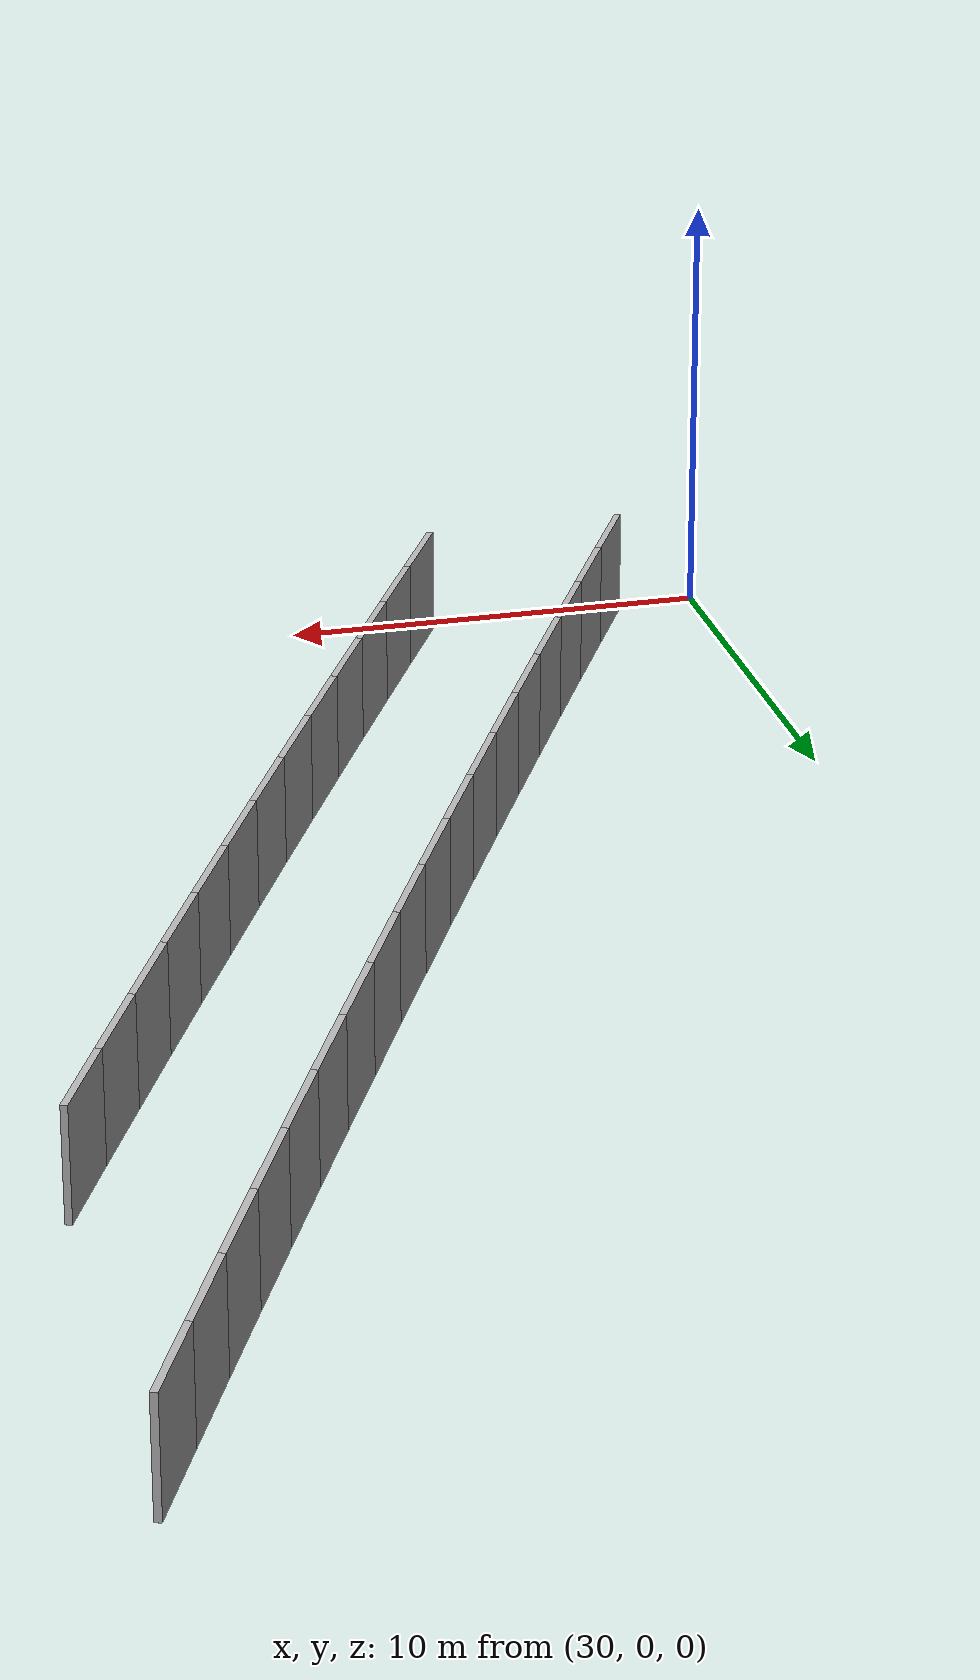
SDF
<?xml version="1.0" ?>
<sdf version="1.6">
  <model name="sps_4416">
    <pose frame="">0 0 0 0 -0 0</pose>
    <static>1</static>
    <self_collide>0</self_collide>
    <allow_auto_disable>0</allow_auto_disable>
    <link name="Wall4347">
      <kinematic>0</kinematic>
      <gravity>1</gravity>
      <self_collide>0</self_collide>
      <collision name="collision">
        <geometry>
          <box>
            <size>2.25457 0.15 2.5</size>
          </box>
        </geometry>
        <pose frame="">0 0 0 0 -0 0</pose>
      </collision>
      <visual name="visual">
        <geometry>
          <box>
            <size>2.25457 0.15 2.5</size>
          </box>
        </geometry>
        <pose frame="">0 0 0 0 -0 0</pose>
        <cast_shadows>1</cast_shadows>
        <transparency>0.0</transparency>
      </visual>
      <pose frame="">37.193 1.31227 1.25 0 -0 1.09524</pose>
    </link>
    <link name="Wall4348">
      <kinematic>0</kinematic>
      <gravity>1</gravity>
      <self_collide>0</self_collide>
      <collision name="collision">
        <geometry>
          <box>
            <size>2.25454 0.15 2.5</size>
          </box>
        </geometry>
        <pose frame="">0 0 0 0 -0 0</pose>
      </collision>
      <visual name="visual">
        <geometry>
          <box>
            <size>2.25454 0.15 2.5</size>
          </box>
        </geometry>
        <pose frame="">0 0 0 0 -0 0</pose>
        <cast_shadows>1</cast_shadows>
        <transparency>0.0</transparency>
      </visual>
      <pose frame="">38.2228 3.31789 1.25 0 -0 1.09763</pose>
    </link>
    <link name="Wall4349">
      <kinematic>0</kinematic>
      <gravity>1</gravity>
      <self_collide>0</self_collide>
      <collision name="collision">
        <geometry>
          <box>
            <size>2.25488 0.15 2.5</size>
          </box>
        </geometry>
        <pose frame="">0 0 0 0 -0 0</pose>
      </collision>
      <visual name="visual">
        <geometry>
          <box>
            <size>2.25488 0.15 2.5</size>
          </box>
        </geometry>
        <pose frame="">0 0 0 0 -0 0</pose>
        <cast_shadows>1</cast_shadows>
        <transparency>0.0</transparency>
      </visual>
      <pose frame="">39.2479 5.32609 1.25 0 -0 1.10002</pose>
    </link>
    <link name="Wall4350">
      <kinematic>0</kinematic>
      <gravity>1</gravity>
      <self_collide>0</self_collide>
      <collision name="collision">
        <geometry>
          <box>
            <size>2.2546 0.15 2.5</size>
          </box>
        </geometry>
        <pose frame="">0 0 0 0 -0 0</pose>
      </collision>
      <visual name="visual">
        <geometry>
          <box>
            <size>2.2546 0.15 2.5</size>
          </box>
        </geometry>
        <pose frame="">0 0 0 0 -0 0</pose>
        <cast_shadows>1</cast_shadows>
        <transparency>0.0</transparency>
      </visual>
      <pose frame="">40.2681 7.33678 1.25 0 -0 1.10241</pose>
    </link>
    <link name="Wall4351">
      <kinematic>0</kinematic>
      <gravity>1</gravity>
      <self_collide>0</self_collide>
      <collision name="collision">
        <geometry>
          <box>
            <size>2.25444 0.15 2.5</size>
          </box>
        </geometry>
        <pose frame="">0 0 0 0 -0 0</pose>
      </collision>
      <visual name="visual">
        <geometry>
          <box>
            <size>2.25444 0.15 2.5</size>
          </box>
        </geometry>
        <pose frame="">0 0 0 0 -0 0</pose>
        <cast_shadows>1</cast_shadows>
        <transparency>0.0</transparency>
      </visual>
      <pose frame="">41.2836 9.34968 1.25 0 -0 1.10478</pose>
    </link>
    <link name="Wall4352">
      <kinematic>0</kinematic>
      <gravity>1</gravity>
      <self_collide>0</self_collide>
      <collision name="collision">
        <geometry>
          <box>
            <size>2.25468 0.15 2.5</size>
          </box>
        </geometry>
        <pose frame="">0 0 0 0 -0 0</pose>
      </collision>
      <visual name="visual">
        <geometry>
          <box>
            <size>2.25468 0.15 2.5</size>
          </box>
        </geometry>
        <pose frame="">0 0 0 0 -0 0</pose>
        <cast_shadows>1</cast_shadows>
        <transparency>0.0</transparency>
      </visual>
      <pose frame="">42.2943 11.365 1.25 0 -0 1.1071</pose>
    </link>
    <link name="Wall4353">
      <kinematic>0</kinematic>
      <gravity>1</gravity>
      <self_collide>0</self_collide>
      <collision name="collision">
        <geometry>
          <box>
            <size>2.25455 0.15 2.5</size>
          </box>
        </geometry>
        <pose frame="">0 0 0 0 -0 0</pose>
      </collision>
      <visual name="visual">
        <geometry>
          <box>
            <size>2.25455 0.15 2.5</size>
          </box>
        </geometry>
        <pose frame="">0 0 0 0 -0 0</pose>
        <cast_shadows>1</cast_shadows>
        <transparency>0.0</transparency>
      </visual>
      <pose frame="">43.3002 13.3828 1.25 0 -0 1.10958</pose>
    </link>
    <link name="Wall4354">
      <kinematic>0</kinematic>
      <gravity>1</gravity>
      <self_collide>0</self_collide>
      <collision name="collision">
        <geometry>
          <box>
            <size>2.25463 0.15 2.5</size>
          </box>
        </geometry>
        <pose frame="">0 0 0 0 -0 0</pose>
      </collision>
      <visual name="visual">
        <geometry>
          <box>
            <size>2.25463 0.15 2.5</size>
          </box>
        </geometry>
        <pose frame="">0 0 0 0 -0 0</pose>
        <cast_shadows>1</cast_shadows>
        <transparency>0.0</transparency>
      </visual>
      <pose frame="">44.3011 15.403 1.25 0 -0 1.11196</pose>
    </link>
    <link name="Wall4355">
      <kinematic>0</kinematic>
      <gravity>1</gravity>
      <self_collide>0</self_collide>
      <collision name="collision">
        <geometry>
          <box>
            <size>2.25482 0.15 2.5</size>
          </box>
        </geometry>
        <pose frame="">0 0 0 0 -0 0</pose>
      </collision>
      <visual name="visual">
        <geometry>
          <box>
            <size>2.25482 0.15 2.5</size>
          </box>
        </geometry>
        <pose frame="">0 0 0 0 -0 0</pose>
        <cast_shadows>1</cast_shadows>
        <transparency>0.0</transparency>
      </visual>
      <pose frame="">45.2975 17.4256 1.25 0 -0 1.11417</pose>
    </link>
    <link name="Wall4356">
      <kinematic>0</kinematic>
      <gravity>1</gravity>
      <self_collide>0</self_collide>
      <collision name="collision">
        <geometry>
          <box>
            <size>2.25451 0.15 2.5</size>
          </box>
        </geometry>
        <pose frame="">0 0 0 0 -0 0</pose>
      </collision>
      <visual name="visual">
        <geometry>
          <box>
            <size>2.25451 0.15 2.5</size>
          </box>
        </geometry>
        <pose frame="">0 0 0 0 -0 0</pose>
        <cast_shadows>1</cast_shadows>
        <transparency>0.0</transparency>
      </visual>
      <pose frame="">46.2891 19.4505 1.25 0 -0 1.11667</pose>
    </link>
    <link name="Wall4357">
      <kinematic>0</kinematic>
      <gravity>1</gravity>
      <self_collide>0</self_collide>
      <collision name="collision">
        <geometry>
          <box>
            <size>2.25389 0.15 2.5</size>
          </box>
        </geometry>
        <pose frame="">0 0 0 0 -0 0</pose>
      </collision>
      <visual name="visual">
        <geometry>
          <box>
            <size>2.25389 0.15 2.5</size>
          </box>
        </geometry>
        <pose frame="">0 0 0 0 -0 0</pose>
        <cast_shadows>1</cast_shadows>
        <transparency>0.0</transparency>
      </visual>
      <pose frame="">47.2754 21.4775 1.25 0 -0 1.11921</pose>
    </link>
    <link name="Wall4358">
      <kinematic>0</kinematic>
      <gravity>1</gravity>
      <self_collide>0</self_collide>
      <collision name="collision">
        <geometry>
          <box>
            <size>2.25458 0.15 2.5</size>
          </box>
        </geometry>
        <pose frame="">0 0 0 0 -0 0</pose>
      </collision>
      <visual name="visual">
        <geometry>
          <box>
            <size>2.25458 0.15 2.5</size>
          </box>
        </geometry>
        <pose frame="">0 0 0 0 -0 0</pose>
        <cast_shadows>1</cast_shadows>
        <transparency>0.0</transparency>
      </visual>
      <pose frame="">48.257 23.5068 1.25 0 -0 1.12131</pose>
    </link>
    <link name="Wall4359">
      <kinematic>0</kinematic>
      <gravity>1</gravity>
      <self_collide>0</self_collide>
      <collision name="collision">
        <geometry>
          <box>
            <size>2.2548 0.15 2.5</size>
          </box>
        </geometry>
        <pose frame="">0 0 0 0 -0 0</pose>
      </collision>
      <visual name="visual">
        <geometry>
          <box>
            <size>2.2548 0.15 2.5</size>
          </box>
        </geometry>
        <pose frame="">0 0 0 0 -0 0</pose>
        <cast_shadows>1</cast_shadows>
        <transparency>0.0</transparency>
      </visual>
      <pose frame="">49.2342 25.5387 1.25 0 -0 1.12373</pose>
    </link>
    <link name="Wall6071">
      <kinematic>0</kinematic>
      <gravity>1</gravity>
      <self_collide>0</self_collide>
      <collision name="collision">
        <geometry>
          <box>
            <size>2.24465 0.15 2.5</size>
          </box>
        </geometry>
        <pose frame="">0 0 0 0 -0 0</pose>
      </collision>
      <visual name="visual">
        <geometry>
          <box>
            <size>2.24465 0.15 2.5</size>
          </box>
        </geometry>
        <pose frame="">0 0 0 0 -0 0</pose>
        <cast_shadows>1</cast_shadows>
        <transparency>0.0</transparency>
      </visual>
      <pose frame="">32.4831 1.21309 1.25 0 -0 1.0929</pose>
    </link>
    <link name="Wall6072">
      <kinematic>0</kinematic>
      <gravity>1</gravity>
      <self_collide>0</self_collide>
      <collision name="collision">
        <geometry>
          <box>
            <size>2.24488 0.15 2.5</size>
          </box>
        </geometry>
        <pose frame="">0 0 0 0 -0 0</pose>
      </collision>
      <visual name="visual">
        <geometry>
          <box>
            <size>2.24488 0.15 2.5</size>
          </box>
        </geometry>
        <pose frame="">0 0 0 0 -0 0</pose>
        <cast_shadows>1</cast_shadows>
        <transparency>0.0</transparency>
      </visual>
      <pose frame="">33.5131 3.20759 1.25 0 -0 1.09531</pose>
    </link>
    <link name="Wall6073">
      <kinematic>0</kinematic>
      <gravity>1</gravity>
      <self_collide>0</self_collide>
      <collision name="collision">
        <geometry>
          <box>
            <size>2.24463 0.15 2.5</size>
          </box>
        </geometry>
        <pose frame="">0 0 0 0 -0 0</pose>
      </collision>
      <visual name="visual">
        <geometry>
          <box>
            <size>2.24463 0.15 2.5</size>
          </box>
        </geometry>
        <pose frame="">0 0 0 0 -0 0</pose>
        <cast_shadows>1</cast_shadows>
        <transparency>0.0</transparency>
      </visual>
      <pose frame="">34.5384 5.20451 1.25 0 -0 1.0976</pose>
    </link>
    <link name="Wall6074">
      <kinematic>0</kinematic>
      <gravity>1</gravity>
      <self_collide>0</self_collide>
      <collision name="collision">
        <geometry>
          <box>
            <size>2.245 0.15 2.5</size>
          </box>
        </geometry>
        <pose frame="">0 0 0 0 -0 0</pose>
      </collision>
      <visual name="visual">
        <geometry>
          <box>
            <size>2.245 0.15 2.5</size>
          </box>
        </geometry>
        <pose frame="">0 0 0 0 -0 0</pose>
        <cast_shadows>1</cast_shadows>
        <transparency>0.0</transparency>
      </visual>
      <pose frame="">35.559 7.2039 1.25 0 -0 1.10004</pose>
    </link>
    <link name="Wall6075">
      <kinematic>0</kinematic>
      <gravity>1</gravity>
      <self_collide>0</self_collide>
      <collision name="collision">
        <geometry>
          <box>
            <size>2.24475 0.15 2.5</size>
          </box>
        </geometry>
        <pose frame="">0 0 0 0 -0 0</pose>
      </collision>
      <visual name="visual">
        <geometry>
          <box>
            <size>2.24475 0.15 2.5</size>
          </box>
        </geometry>
        <pose frame="">0 0 0 0 -0 0</pose>
        <cast_shadows>1</cast_shadows>
        <transparency>0.0</transparency>
      </visual>
      <pose frame="">36.5748 9.20579 1.25 0 -0 1.10242</pose>
    </link>
    <link name="Wall6076">
      <kinematic>0</kinematic>
      <gravity>1</gravity>
      <self_collide>0</self_collide>
      <collision name="collision">
        <geometry>
          <box>
            <size>2.24486 0.15 2.5</size>
          </box>
        </geometry>
        <pose frame="">0 0 0 0 -0 0</pose>
      </collision>
      <visual name="visual">
        <geometry>
          <box>
            <size>2.24486 0.15 2.5</size>
          </box>
        </geometry>
        <pose frame="">0 0 0 0 -0 0</pose>
        <cast_shadows>1</cast_shadows>
        <transparency>0.0</transparency>
      </visual>
      <pose frame="">37.5858 11.21 1.25 0 -0 1.10473</pose>
    </link>
    <link name="Wall6077">
      <kinematic>0</kinematic>
      <gravity>1</gravity>
      <self_collide>0</self_collide>
      <collision name="collision">
        <geometry>
          <box>
            <size>2.2448 0.15 2.5</size>
          </box>
        </geometry>
        <pose frame="">0 0 0 0 -0 0</pose>
      </collision>
      <visual name="visual">
        <geometry>
          <box>
            <size>2.2448 0.15 2.5</size>
          </box>
        </geometry>
        <pose frame="">0 0 0 0 -0 0</pose>
        <cast_shadows>1</cast_shadows>
        <transparency>0.0</transparency>
      </visual>
      <pose frame="">38.5922 13.2166 1.25 0 -0 1.10709</pose>
    </link>
    <link name="Wall6078">
      <kinematic>0</kinematic>
      <gravity>1</gravity>
      <self_collide>0</self_collide>
      <collision name="collision">
        <geometry>
          <box>
            <size>2.24475 0.15 2.5</size>
          </box>
        </geometry>
        <pose frame="">0 0 0 0 -0 0</pose>
      </collision>
      <visual name="visual">
        <geometry>
          <box>
            <size>2.24475 0.15 2.5</size>
          </box>
        </geometry>
        <pose frame="">0 0 0 0 -0 0</pose>
        <cast_shadows>1</cast_shadows>
        <transparency>0.0</transparency>
      </visual>
      <pose frame="">39.5938 15.2256 1.25 0 -0 1.10957</pose>
    </link>
    <link name="Wall6079">
      <kinematic>0</kinematic>
      <gravity>1</gravity>
      <self_collide>0</self_collide>
      <collision name="collision">
        <geometry>
          <box>
            <size>2.24472 0.15 2.5</size>
          </box>
        </geometry>
        <pose frame="">0 0 0 0 -0 0</pose>
      </collision>
      <visual name="visual">
        <geometry>
          <box>
            <size>2.24472 0.15 2.5</size>
          </box>
        </geometry>
        <pose frame="">0 0 0 0 -0 0</pose>
        <cast_shadows>1</cast_shadows>
        <transparency>0.0</transparency>
      </visual>
      <pose frame="">40.5905 17.2369 1.25 0 -0 1.11187</pose>
    </link>
    <link name="Wall6080">
      <kinematic>0</kinematic>
      <gravity>1</gravity>
      <self_collide>0</self_collide>
      <collision name="collision">
        <geometry>
          <box>
            <size>2.24483 0.15 2.5</size>
          </box>
        </geometry>
        <pose frame="">0 0 0 0 -0 0</pose>
      </collision>
      <visual name="visual">
        <geometry>
          <box>
            <size>2.24483 0.15 2.5</size>
          </box>
        </geometry>
        <pose frame="">0 0 0 0 -0 0</pose>
        <cast_shadows>1</cast_shadows>
        <transparency>0.0</transparency>
      </visual>
      <pose frame="">41.5825 19.2506 1.25 0 -0 1.11429</pose>
    </link>
    <link name="Wall6081">
      <kinematic>0</kinematic>
      <gravity>1</gravity>
      <self_collide>0</self_collide>
      <collision name="collision">
        <geometry>
          <box>
            <size>2.2442 0.15 2.5</size>
          </box>
        </geometry>
        <pose frame="">0 0 0 0 -0 0</pose>
      </collision>
      <visual name="visual">
        <geometry>
          <box>
            <size>2.2442 0.15 2.5</size>
          </box>
        </geometry>
        <pose frame="">0 0 0 0 -0 0</pose>
        <cast_shadows>1</cast_shadows>
        <transparency>0.0</transparency>
      </visual>
      <pose frame="">42.5694 21.2665 1.25 0 -0 1.11678</pose>
    </link>
    <link name="Wall6082">
      <kinematic>0</kinematic>
      <gravity>1</gravity>
      <self_collide>0</self_collide>
      <collision name="collision">
        <geometry>
          <box>
            <size>2.2448 0.15 2.5</size>
          </box>
        </geometry>
        <pose frame="">0 0 0 0 -0 0</pose>
      </collision>
      <visual name="visual">
        <geometry>
          <box>
            <size>2.2448 0.15 2.5</size>
          </box>
        </geometry>
        <pose frame="">0 0 0 0 -0 0</pose>
        <cast_shadows>1</cast_shadows>
        <transparency>0.0</transparency>
      </visual>
      <pose frame="">43.5515 23.2847 1.25 0 -0 1.11903</pose>
    </link>
    <link name="Wall6083">
      <kinematic>0</kinematic>
      <gravity>1</gravity>
      <self_collide>0</self_collide>
      <collision name="collision">
        <geometry>
          <box>
            <size>2.24476 0.15 2.5</size>
          </box>
        </geometry>
        <pose frame="">0 0 0 0 -0 0</pose>
      </collision>
      <visual name="visual">
        <geometry>
          <box>
            <size>2.24476 0.15 2.5</size>
          </box>
        </geometry>
        <pose frame="">0 0 0 0 -0 0</pose>
        <cast_shadows>1</cast_shadows>
        <transparency>0.0</transparency>
      </visual>
      <pose frame="">44.529 25.3055 1.25 0 -0 1.1215</pose>
    </link>
    <link name="Wall6084">
      <kinematic>0</kinematic>
      <gravity>1</gravity>
      <self_collide>0</self_collide>
      <collision name="collision">
        <geometry>
          <box>
            <size>2.24481 0.15 2.5</size>
          </box>
        </geometry>
        <pose frame="">0 0 0 0 -0 0</pose>
      </collision>
      <visual name="visual">
        <geometry>
          <box>
            <size>2.24481 0.15 2.5</size>
          </box>
        </geometry>
        <pose frame="">0 0 0 0 -0 0</pose>
        <cast_shadows>1</cast_shadows>
        <transparency>0.0</transparency>
      </visual>
      <pose frame="">45.5016 27.3286 1.25 0 -0 1.12377</pose>
    </link>
    <link name="Wall6085">
      <kinematic>0</kinematic>
      <gravity>1</gravity>
      <self_collide>0</self_collide>
      <collision name="collision">
        <geometry>
          <box>
            <size>2.24469 0.15 2.5</size>
          </box>
        </geometry>
        <pose frame="">0 0 0 0 -0 0</pose>
      </collision>
      <visual name="visual">
        <geometry>
          <box>
            <size>2.24469 0.15 2.5</size>
          </box>
        </geometry>
        <pose frame="">0 0 0 0 -0 0</pose>
        <cast_shadows>1</cast_shadows>
        <transparency>0.0</transparency>
      </visual>
      <pose frame="">46.4697 29.3539 1.25 0 -0 1.1261</pose>
    </link>
    <link name="Wall6086">
      <kinematic>0</kinematic>
      <gravity>1</gravity>
      <self_collide>0</self_collide>
      <collision name="collision">
        <geometry>
          <box>
            <size>2.24496 0.15 2.5</size>
          </box>
        </geometry>
        <pose frame="">0 0 0 0 -0 0</pose>
      </collision>
      <visual name="visual">
        <geometry>
          <box>
            <size>2.24496 0.15 2.5</size>
          </box>
        </geometry>
        <pose frame="">0 0 0 0 -0 0</pose>
        <cast_shadows>1</cast_shadows>
        <transparency>0.0</transparency>
      </visual>
      <pose frame="">47.4329 31.3816 1.25 0 -0 1.12856</pose>
    </link>
    <link name="Wall6087">
      <kinematic>0</kinematic>
      <gravity>1</gravity>
      <self_collide>0</self_collide>
      <collision name="collision">
        <geometry>
          <box>
            <size>2.24467 0.15 2.5</size>
          </box>
        </geometry>
        <pose frame="">0 0 0 0 -0 0</pose>
      </collision>
      <visual name="visual">
        <geometry>
          <box>
            <size>2.24467 0.15 2.5</size>
          </box>
        </geometry>
        <pose frame="">0 0 0 0 -0 0</pose>
        <cast_shadows>1</cast_shadows>
        <transparency>0.0</transparency>
      </visual>
      <pose frame="">48.3911 33.4116 1.25 0 -0 1.13094</pose>
    </link>
    <link name="Wall6088">
      <kinematic>0</kinematic>
      <gravity>1</gravity>
      <self_collide>0</self_collide>
      <collision name="collision">
        <geometry>
          <box>
            <size>2.24488 0.15 2.5</size>
          </box>
        </geometry>
        <pose frame="">0 0 0 0 -0 0</pose>
      </collision>
      <visual name="visual">
        <geometry>
          <box>
            <size>2.24488 0.15 2.5</size>
          </box>
        </geometry>
        <pose frame="">0 0 0 0 -0 0</pose>
        <cast_shadows>1</cast_shadows>
        <transparency>0.0</transparency>
      </visual>
      <pose frame="">49.3447 35.4438 1.25 0 -0 1.13323</pose>
    </link>
  </model>
</sdf>
